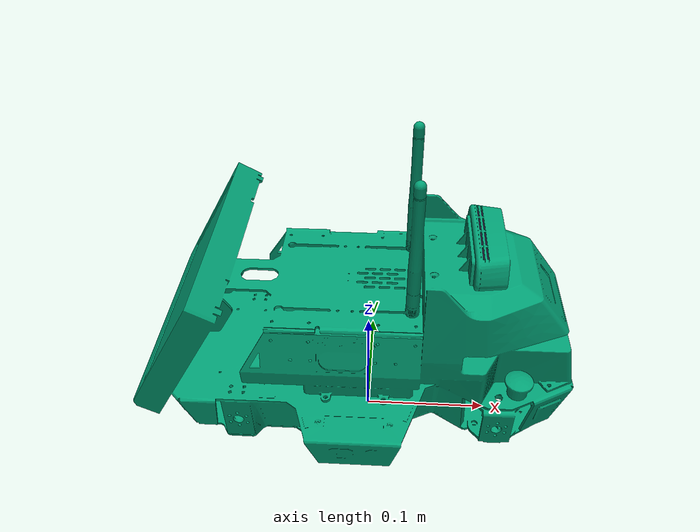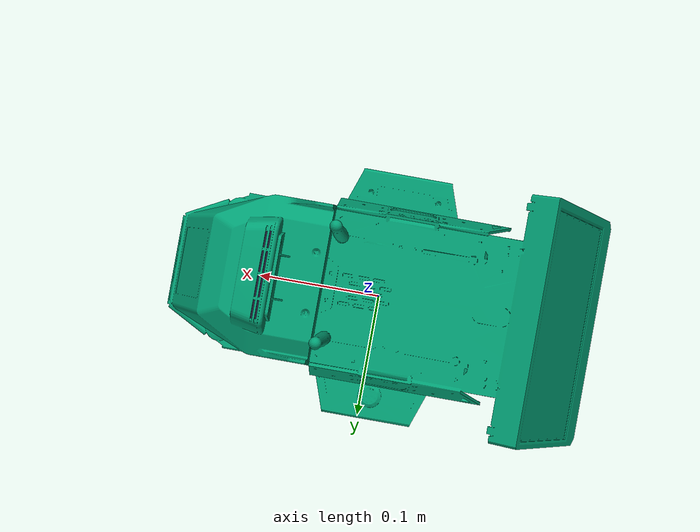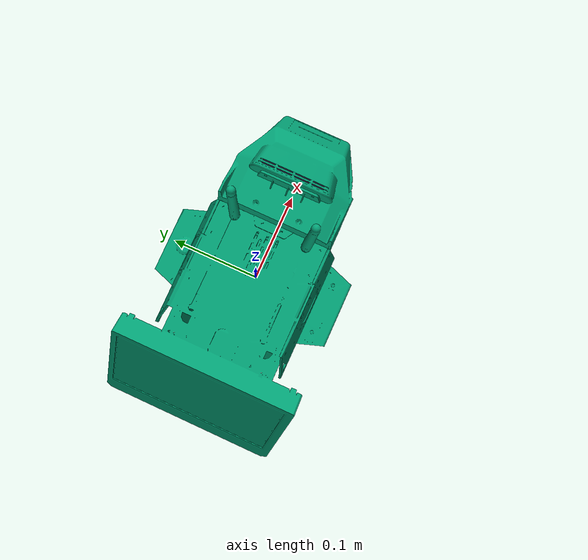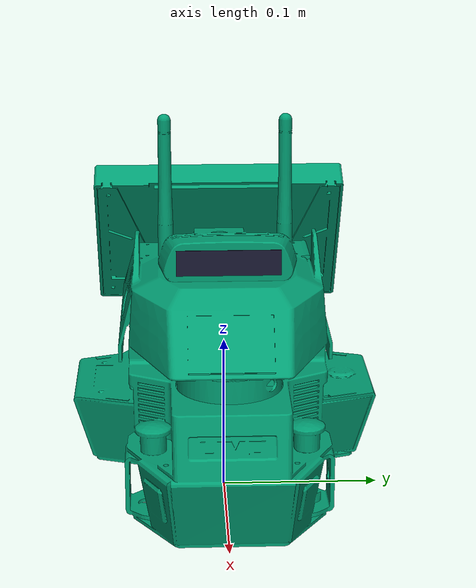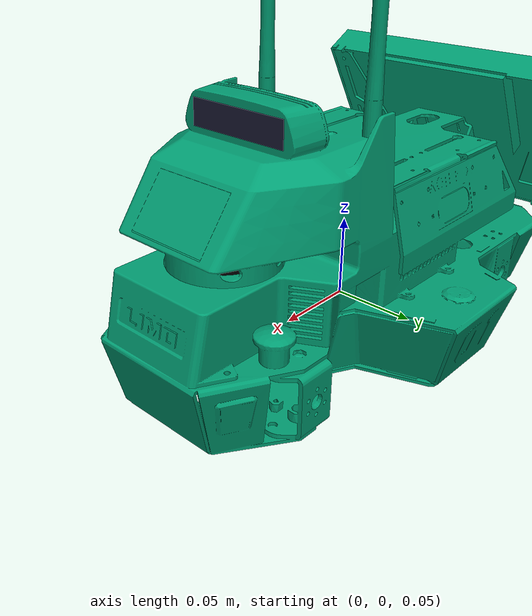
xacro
<?xml version="1.0"?>
<robot xmlns:xacro="http://www.ros.org/wiki/xacro">

	<!--  ARGUMENTS  -->
	<xacro:arg name="use_ros2_control" default="true" />
	<xacro:arg name="sim_mode" default="true" />
	<xacro:arg name="robot_name" default="arap_robot" />
	<xacro:arg name="prefix" default="" />
	<xacro:arg name="drive_system" default="diff" />
	<xacro:arg name="use_gazebo" default="true" />

	<!-- Variables -->
	<xacro:property name="M_PI" value="3.14159" />

	<!-- Robot Variables -->
	<xacro:property name="base_mass" value="2.1557" />

	<!-- Robot Geometries -->
	<xacro:property name="base_x_size" value="0.13" />
	<xacro:property name="base_y_size" value="0.12" />
	<xacro:property name="base_z_size" value="0.1" />

	<xacro:property name="wheelbase" value="0.2" />
	<xacro:property name="track" value="0.13" />
	<xacro:property name="wheel_vertical_offset" value="0.05" />

	<xacro:property name="wheel_radius" value="0.0225" /> <!-- Possible values: (0.0325 / 2), 0.048, 0.042, 0.01625 -->
	<xacro:property name="wheel_length" value="0.045" />

	<xacro:property name="wheel_mass" value="0.5" /> <!-- Initially 0.5 -->

	<xacro:property name="wheel_separation" value="0.13" /> <!-- Initially 0.170 (Calculates the distance between the two wheels - on the y-axis) -->
	<xacro:property name="max_linear_acceleration" value="1.0" />

	<xacro:property name="kingpin_width" value="0.122" />
	<xacro:property name="steering_limit" value="0.523598767" />

	<!-- IMPORTS -->
	<xacro:include filename="$(find arap_robot_description)/urdf/macros/material.xacro" />
	<xacro:include filename="$(find arap_robot_description)/urdf/macros/common.xacro" />
	<xacro:include filename="$(find arap_robot_description)/urdf/macros/inertial.xacro" />
	<xacro:include filename="$(find arap_robot_description)/urdf/macros/wheels.xacro" />

	<xacro:include filename="$(find arap_robot_description)/urdf/sensors/laser.xacro" />
	<xacro:include filename="$(find arap_robot_description)/urdf/sensors/imu.xacro" />
	<xacro:include filename="$(find arap_robot_description)/urdf/sensors/camera.xacro" />

	<!-- BASE FOOTPRINT -->
    <link name="base_footprint"/>

	<joint name="base_joint" type="fixed">
	<parent link="base_footprint"/>
	<child link="base_link"/>
	<origin xyz="0.0 0.0 0.0" rpy="0 0 0"/>
	</joint>

	<!-- Base link -->
	<link name="base_link"/>

	<!-- Chassis -->
	<joint name="chassis_joint" type="fixed">
		<parent link="base_link"/>
		<child link="chassis"/>
		<origin xyz="0.0 0.0 0.15"/>
	</joint>
	<link name="chassis">
		<visual name="chassis_visual">
			<origin xyz="0 0 -0.15" rpy="0 0 1.57" />
			<geometry>
				<mesh filename="package://arap_robot_description/meshes/chassis/chassis.dae"
					scale="1 1 1" />
			</geometry>
		</visual>
		<collision name="chassis_collision">
			<origin xyz="0 0 -0.15" rpy="0 0 1.57" />
			<geometry>
				<mesh filename="package://arap_robot_description/meshes/chassis/chassis.stl" scale="1 1 1" />
			</geometry>
		</collision>
		<inertial name="chassis_inertial">
			<origin xyz="0 0 0" rpy="0 0 1.57" />
			<mass value="${base_mass}" />
			<inertia ixx="0.0043832566666666675" ixy="0" ixz="0" iyy="0.004832360833333334" iyz="0"
				izz="0.005622784166666667" />
		</inertial>
	</link>

	<!-- Sensors -->
	<xacro:laser parent_prefix="chassis">
		<origin xyz="0.103 0 -0.034" rpy="0 0 0" />
	</xacro:laser>

	<xacro:camera parent_prefix="chassis">
		<origin xyz="0.084 0 0.03" rpy="0 0 0" />
	</xacro:camera>

	<xacro:imu parent_prefix="chassis">
		<origin xyz="0 0 -0.1" rpy="0 0 0" />
	</xacro:imu>

</robot>

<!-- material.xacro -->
<robot xmlns:xacro="http://www.ros.org/wiki/xacro">

	<material name="dark_gray">
		<color rgba="0.2 0.2 0.2 1.0" />
	</material>

	<material name="invisible">
		<color rgba="0 0 0 0" />
	</material>

    <material name="blue">
          <color rgba="0 0 0.8 1" />
    </material>

</robot>

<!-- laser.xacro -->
<robot xmlns:xacro="http://ros.org/wiki/xacro">
	<xacro:macro name="laser" params="parent_prefix *joint_pose">
		<joint name="laser_joint" type="fixed">
			<parent link="${parent_prefix}" />
			<child link="laser_frame" />
			<xacro:insert_block name="joint_pose" />
		</joint>

		<link name='laser_frame'>
			<pose>0 0 0 0 0 0</pose>
			<visual name="laser_visual">
				<origin xyz="0 0 0" rpy="0 0 0" />
				<geometry>
					<cylinder radius="0.02" length="0.01" />
				</geometry>
				<!-- For the color -->
				<material name="invisible" />
			</visual>
			<collision name="laser_collision">
				<origin xyz="0 0 0" rpy="0 0 0" />
				<geometry>
					<cylinder radius="0.032" length="0.016" />
				</geometry>
			</collision>
			<inertial name="laser_inertial">
				<mass value="0.1" />
				<origin xyz="0 0 0" rpy="0 0 0" />
				<inertia ixx="1e-6" ixy="0" ixz="0" iyy="1e-6" iyz="0" izz="1e-6" />
			</inertial>
		</link>

		<gazebo reference="laser_frame">
			<sensor name="laser" type="gpu_lidar">
				<pose> 0 0 0 0 0 0 </pose>
				<always_on>true</always_on>
				<visualize>true</visualize>
				<update_rate>10</update_rate>
				<lidar>
					<scan>
						<horizontal>
							<samples>120</samples>
							<resolution>1.000000</resolution>
							<min_angle>-3.14159</min_angle>
							<max_angle>3.14159</max_angle>
						</horizontal>
					</scan>
					<range>
						<min>0.3</min>
						<max>15.0</max>
						<resolution>0.015</resolution>
					</range>
					<noise>
						<type>gaussian</type>
						<mean>0.0</mean>
						<stddev>0.01</stddev>
					</noise>
				</lidar>
				<topic>scan</topic>
				<frame_name>laser_frame</frame_name>
				<gz_frame_id>laser_frame</gz_frame_id>
			</sensor>
		</gazebo>
	</xacro:macro>
</robot>

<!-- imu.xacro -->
<robot xmlns:xacro="http://ros.org/wiki/xacro">
    <xacro:macro name="imu" params="parent_prefix *joint_pose">

        <link name='imu_link'>
            <pose>0 0 0 0 0 0</pose>
            <inertial>
                <mass value="0.01" />
                <origin xyz="0.0 0 0" rpy="0 0 0" />
                <inertia ixx="1e-7" ixy="0" ixz="0" iyy="1e-7" iyz="0" izz="1e-7" />
            </inertial>
            <visual name='imu_visual'>
                <origin xyz="0 0 0" rpy="0 0 0" />
                <geometry>
                    <box size="0.001 0.001 0.001" />
                </geometry>
                <material name='imu_material'>
                    <color rgba="0.1 0.1 0.2 0" />
                </material>
            </visual>
            <collision name='imu_collision'>
                <origin xyz="0 0 0" rpy="0 0 0" />
                <geometry>
                    <box size="0.001 0.001 0.001" />
                </geometry>
            </collision>
        </link>

        <joint type="fixed" name="imu_joint">
            <xacro:insert_block name="joint_pose" />
            <parent link="${parent_prefix}" />
            <child link="imu_link" />
        </joint>

        <gazebo reference="imu_link">
            <gravity>true</gravity>
            <sensor name="imu" type="imu">
                <always_on>true</always_on>
                <update_rate>100</update_rate>
                <frame_name>imu_link</frame_name>
                <visualize>true</visualize>
                <imu>
                    <orientation>
                        <x>
                            <noise type="gaussian">
                                <mean>0.0</mean>
                                <stddev>2e-3</stddev>
                            </noise>
                        </x>
                        <y>
                            <noise type="gaussian">
                                <mean>0.0</mean>
                                <stddev>2e-3</stddev>
                            </noise>
                        </y>
                        <z>
                            <noise type="gaussian">
                                <mean>0.0</mean>
                                <stddev>2e-3</stddev>
                            </noise>
                        </z>
                    </orientation>

                    <angular_velocity>
                        <x>
                            <noise type="gaussian">
                                <mean>0.0</mean>
                                <stddev>2e-4</stddev>
                            </noise>
                        </x>
                        <y>
                            <noise type="gaussian">
                                <mean>0.0</mean>
                                <stddev>2e-4</stddev>
                            </noise>
                        </y>
                        <z>
                            <noise type="gaussian">
                                <mean>0.0</mean>
                                <stddev>2e-4</stddev>
                            </noise>
                        </z>
                    </angular_velocity>

                    <linear_acceleration>
                        <x>
                            <noise type="gaussian">
                                <mean>0.0</mean>
                                <stddev>1.7e-2</stddev>
                            </noise>
                        </x>
                        <y>
                            <noise type="gaussian">
                                <mean>0.0</mean>
                                <stddev>1.7e-2</stddev>
                            </noise>
                        </y>
                        <z>
                            <noise type="gaussian">
                                <mean>0.0</mean>
                                <stddev>1.7e-2</stddev>
                            </noise>
                        </z>
                    </linear_acceleration>
                </imu>
                <topic>imu</topic>
                <gz_frame_id>imu_link</gz_frame_id>
            </sensor>
        </gazebo>
    </xacro:macro>
</robot>

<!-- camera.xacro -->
<robot xmlns:xacro="http://ros.org/wiki/xacro">
  <xacro:macro name="camera" params="parent_prefix *joint_pose">
    <joint name="camera_joint" type="fixed">
      <parent link="${parent_prefix}" />
      <child link="camera_link" />
      <xacro:insert_block name="joint_pose" />
    </joint>

    <link name='camera_link'>
      <pose>0 0 0 0 0 0</pose>
      <inertial>
        <mass value="0.1" />
        <origin xyz="0 0 0" rpy="0 0 0" />
        <inertia ixx="1e-6" ixy="0" ixz="0" iyy="1e-6" iyz="0" izz="1e-6" />
      </inertial>
      <visual name='camera_visual'>
        <origin xyz="0 0 0" rpy="0 0 0" />
        <geometry>
          <box size="0.02 0.06 0.015" />
        </geometry>
        <material name='camera_material'>
          <color rgba="0.1 0.1 0.2 0" />
        </material>
      </visual>
      <collision name='camera_collision'>
        <origin xyz="0 0 0" rpy="0 0 0" />
        <geometry>
          <box size="0.02 0.06 0.015" />
        </geometry>
      </collision>
    </link>

    <joint name="camera_optical_joint" type="fixed">
      <parent link="camera_link" />
      <child link="camera_optical_link" />
      <origin xyz="0 0 0" rpy="${-M_PI/2} 0 ${-M_PI/2} " />
    </joint>

    <link name="camera_optical_link" />

    <gazebo reference="camera_link">
      <sensor name="camera" type="camera">
        <pose>0 0 0 0 0 0</pose>
        <always_on>true</always_on>
        <update_rate>10</update_rate>
        <visualize>true</visualize>
        <camera>
          <camera_info_topic>camera/camera_info</camera_info_topic>
          <horizontal_fov>1.047</horizontal_fov>
          <image>
            <width>640</width>
            <height>480</height>
            <format>R8G8B8</format>
          </image>
          <clip>
            <near>0.02</near>
            <far>300</far>
          </clip>
        </camera>
        <topic>camera/image_raw</topic>
        <gz_frame_id>camera_optical_link</gz_frame_id>
      </sensor>
    </gazebo>
  </xacro:macro>
</robot>
